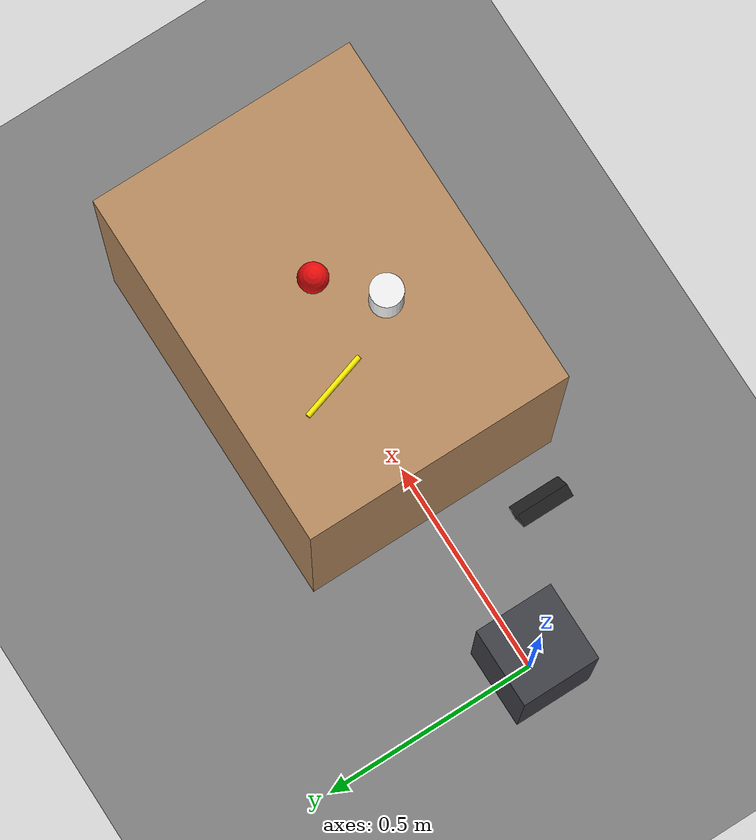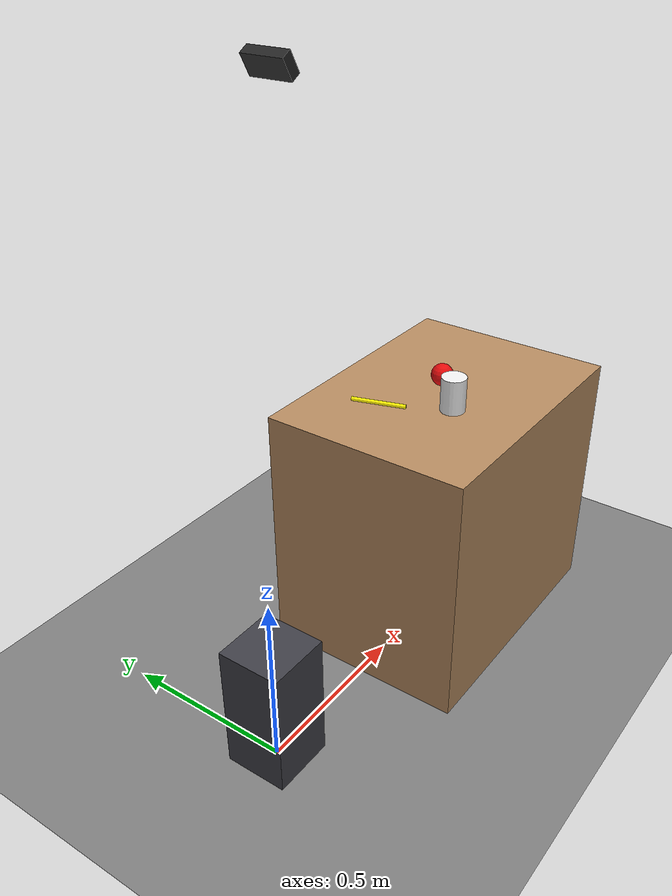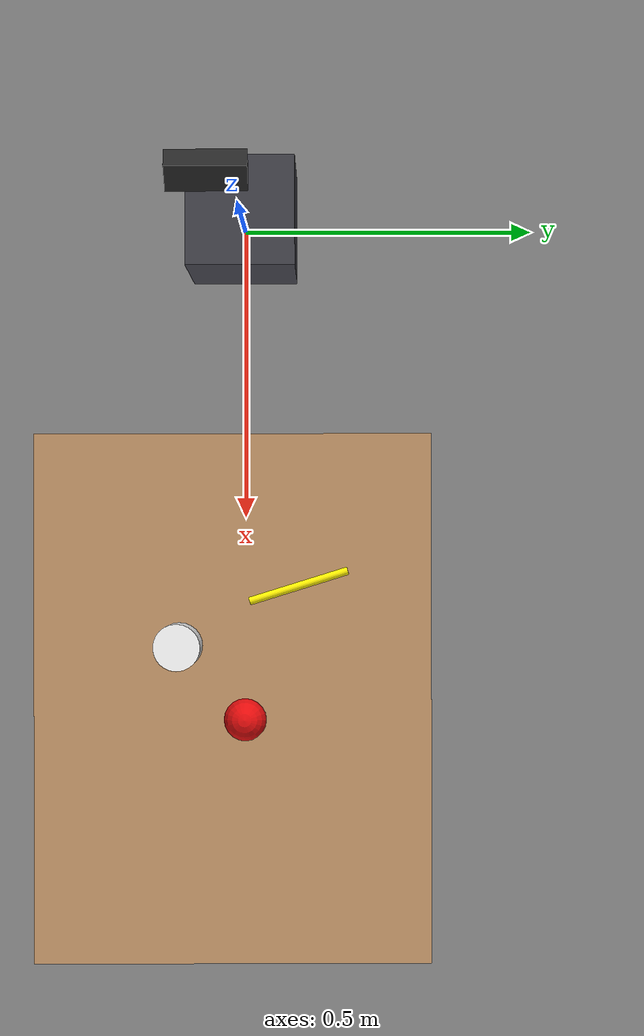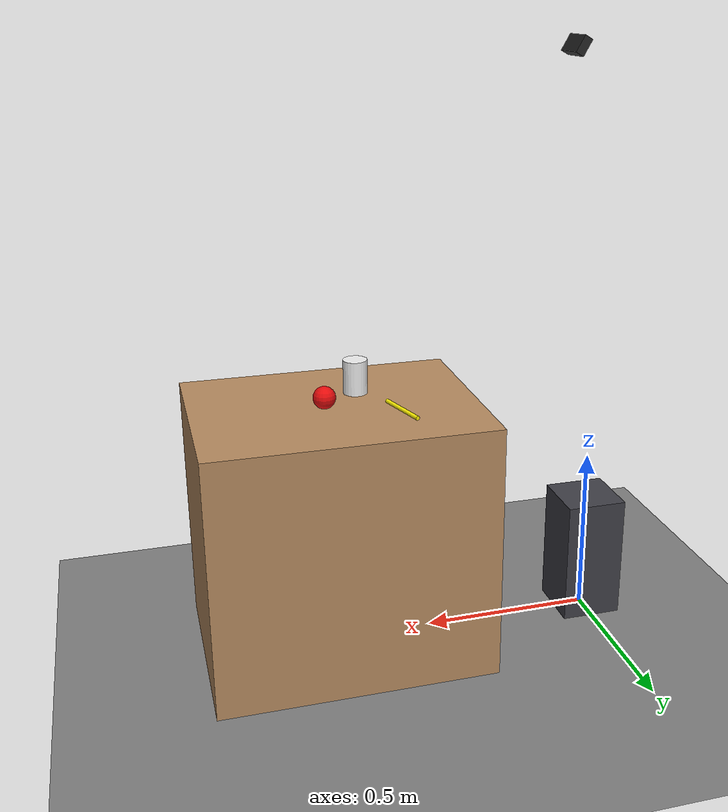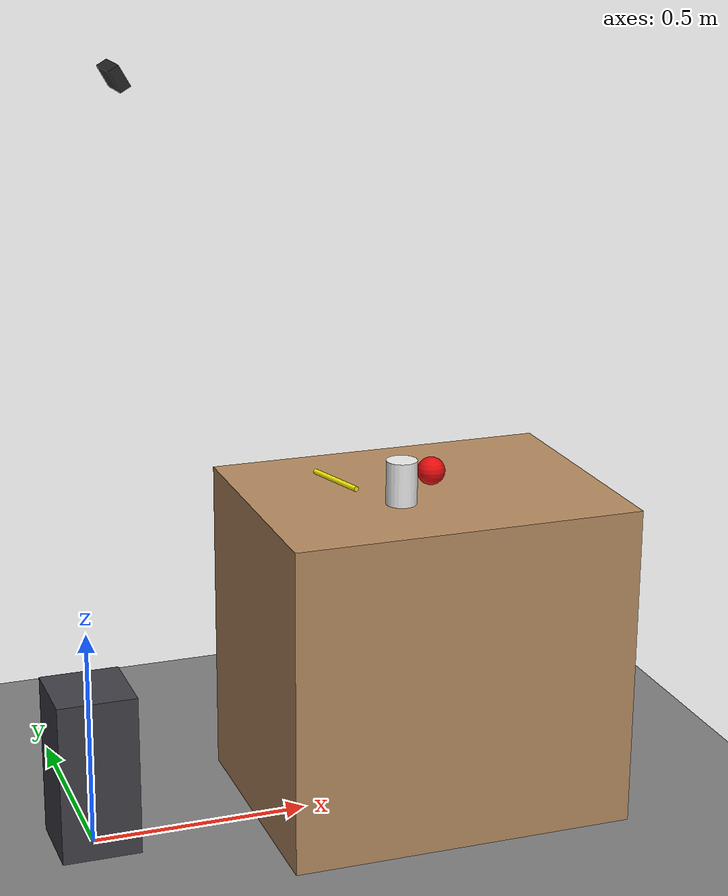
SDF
<?xml version="1.0"?>
<sdf version="1.6">
<world name="grasp_experiment">

  <!-- Iluminação -->
  <light name="sun" type="directional">
    <cast_shadows>true</cast_shadows>
    <pose>0 0 10 0 0 0</pose>
    <diffuse>0.9 0.9 0.9 1</diffuse>
    <specular>0.3 0.3 0.3 1</specular>
    <direction>-0.5 0.2 -0.9</direction>
  </light>

  <!-- Chão -->
  <model name="ground_plane">
    <static>true</static>
    <link name="link">
      <collision name="collision">
        <geometry><plane><normal>0 0 1</normal><size>20 20</size></plane></geometry>
      </collision>
      <visual name="visual">
        <geometry><plane><normal>0 0 1</normal><size>20 20</size></plane></geometry>
        <material><ambient>0.4 0.4 0.4 1</ambient><diffuse>0.5 0.5 0.5 1</diffuse></material>
      </visual>
    </link>
  </model>

  <!-- Pedestal do robô: base_link do CR10 spawnado em z=0.375 (topo do pedestal).
       Dimensão 18×18 cm corresponde ao footprint da base do CR10 (~162 mm). -->
  <model name="robot_pedestal">
    <static>true</static>
    <pose>0 0 0.1875 0 0 0</pose>
    <link name="link">
      <collision name="collision">
        <geometry><box><size>0.18 0.18 0.375</size></box></geometry>
      </collision>
      <visual name="visual">
        <geometry><box><size>0.18 0.18 0.375</size></box></geometry>
        <material>
          <ambient>0.20 0.20 0.22 1</ambient>
          <diffuse>0.25 0.25 0.28 1</diffuse>
          <specular>0.15 0.15 0.15 1</specular>
        </material>
      </visual>
    </link>
  </model>

  <!-- Mesa de trabalho -->
  <!-- Centro x=0.78 m: face frontal em x=0.38 m (38 cm do robô → folga ampla) -->
  <!-- Superfície em z=0.75m; box height=0.75, center z=0.375 -->
  <model name="workbench">
    <static>true</static>
    <pose>0.78 0 0.375 0 0 0</pose>
    <link name="link">
      <collision name="collision">
        <geometry><box><size>0.80 0.60 0.75</size></box></geometry>
      </collision>
      <visual name="visual">
        <geometry><box><size>0.80 0.60 0.75</size></box></geometry>
        <material>
          <ambient>0.60 0.45 0.30 1</ambient>
          <diffuse>0.72 0.55 0.38 1</diffuse>
        </material>
      </visual>
    </link>
  </model>

  <!-- ================================================================
       OBJETOS NA MESA (superfície em z=0.75)
       ================================================================ -->

  <!-- LÁPIS: cilindro amarelo, deitado, raio=0.006m, comprimento=0.155m -->
  <!-- Centro do cilindro em z=0.75+0.006=0.756, eixo no plano XY (roll=pi/2) -->
  <!-- x=0.61 m do robô: r≈0.62 m — zona de boa manipulabilidade -->
  <model name="pencil">
    <pose>0.61 0.10 0.756 1.5708 0 0.3</pose>
    <link name="link">
      <inertial>
        <mass>0.015</mass>
        <inertia><ixx>4e-5</ixx><iyy>4e-5</iyy><izz>4e-7</izz>
                 <ixy>0</ixy><ixz>0</ixz><iyz>0</iyz></inertia>
      </inertial>
      <collision name="collision">
        <geometry><cylinder><radius>0.006</radius><length>0.155</length></cylinder></geometry>
      </collision>
      <visual name="visual">
        <geometry><cylinder><radius>0.006</radius><length>0.155</length></cylinder></geometry>
        <material>
          <ambient>0.9 0.85 0.0 1</ambient>
          <diffuse>1.0 0.95 0.0 1</diffuse>
          <specular>0.3 0.3 0.0 1</specular>
        </material>
      </visual>
    </link>
  </model>

  <!-- COPO: cilindro branco, em pé, raio=0.035m, altura=0.10m -->
  <!-- Base em z=0.75, centro em z=0.75+0.05=0.80 -->
  <!-- x=0.70 m do robô: r≈0.71 m — zona central de trabalho -->
  <model name="cup">
    <pose>0.70 -0.08 0.80 0 0 0</pose>
    <link name="link">
      <inertial>
        <mass>0.12</mass>
        <inertia><ixx>2e-4</ixx><iyy>2e-4</iyy><izz>7e-5</izz>
                 <ixy>0</ixy><ixz>0</ixz><iyz>0</iyz></inertia>
      </inertial>
      <collision name="collision">
        <geometry><cylinder><radius>0.035</radius><length>0.10</length></cylinder></geometry>
      </collision>
      <visual name="visual">
        <geometry><cylinder><radius>0.035</radius><length>0.10</length></cylinder></geometry>
        <material>
          <ambient>0.85 0.85 0.85 1</ambient>
          <diffuse>0.95 0.95 0.95 1</diffuse>
          <specular>0.50 0.50 0.50 1</specular>
        </material>
      </visual>
    </link>
  </model>

  <!-- BOLA: esfera vermelha, raio=0.032m -->
  <!-- Centro em z=0.75+0.032=0.782 -->
  <!-- x=0.81 m do robô: r=0.81 m — extremidade da zona de trabalho -->
  <model name="ball">
    <pose>0.81 0.02 0.782 0 0 0</pose>
    <link name="link">
      <inertial>
        <mass>0.057</mass>
        <inertia><ixx>2.3e-5</ixx><iyy>2.3e-5</iyy><izz>2.3e-5</izz>
                 <ixy>0</ixy><ixz>0</ixz><iyz>0</iyz></inertia>
      </inertial>
      <collision name="collision">
        <geometry><sphere><radius>0.032</radius></sphere></geometry>
      </collision>
      <visual name="visual">
        <geometry><sphere><radius>0.032</radius></sphere></geometry>
        <material>
          <ambient>0.8 0.05 0.05 1</ambient>
          <diffuse>0.9 0.05 0.05 1</diffuse>
          <specular>0.5 0.2 0.2 1</specular>
        </material>
      </visual>
    </link>
  </model>

  <model name="rgbd_camera">
    <static>true</static>
    <pose>0.10 0.0 1.70 0 1.05 0</pose>
    <link name="camera_link">
      <!-- Corpo físico da câmera (visual apenas) -->
      <visual name="body_visual">
        <geometry><box><size>0.05 0.10 0.025</size></box></geometry>
        <material><ambient>0.1 0.1 0.1 1</ambient><diffuse>0.15 0.15 0.15 1</diffuse></material>
      </visual>

      <sensor name="rgb_camera" type="camera">
        <always_on>true</always_on>
        <update_rate>30</update_rate>
        <camera name="camera">
          <horizontal_fov>1.2217</horizontal_fov>
          <image>
            <width>848</width>
            <height>480</height>
            <format>R8G8B8</format>
          </image>
          <clip>
            <near>0.1</near>
            <far>3.0</far>
          </clip>
          <noise>
            <type>gaussian</type>
            <mean>0.0</mean>
            <stddev>0.001</stddev>
          </noise>
        </camera>
        <plugin name="gazebo_ros_camera"
                filename="libgazebo_ros_camera.so">
          <ros>
            <namespace>/camera</namespace>
          </ros>
          <camera_name>color</camera_name>
          <frame_name>camera_link</frame_name>
        </plugin>
      </sensor>
    </link>
  </model>

  <!-- Física -->
  <physics name="default_physics" default="true" type="ode">
    <max_step_size>0.001</max_step_size>
    <real_time_factor>1.0</real_time_factor>
    <real_time_update_rate>1000</real_time_update_rate>
    <gravity>0 0 -9.81</gravity>
    <ode>
      <solver><type>quick</type><iters>150</iters><sor>1.3</sor></solver>
      <constraints>
        <cfm>1e-6</cfm><erp>0.2</erp>
        <contact_max_correcting_vel>0.1</contact_max_correcting_vel>
        <contact_surface_layer>0.001</contact_surface_layer>
      </constraints>
    </ode>
  </physics>

</world>
</sdf>
